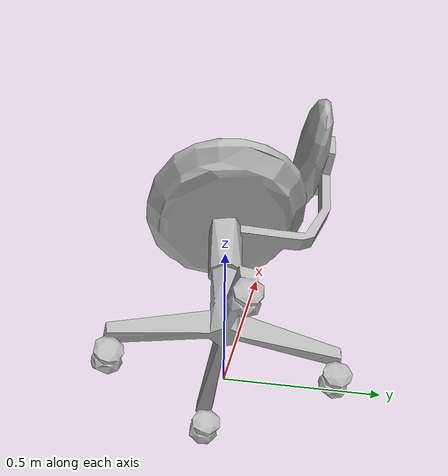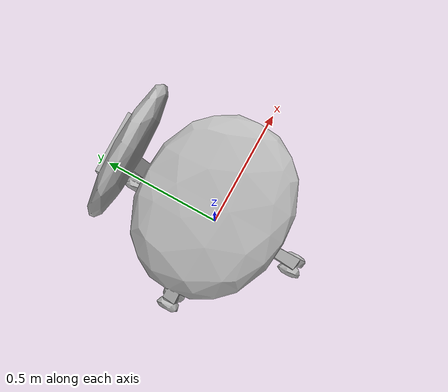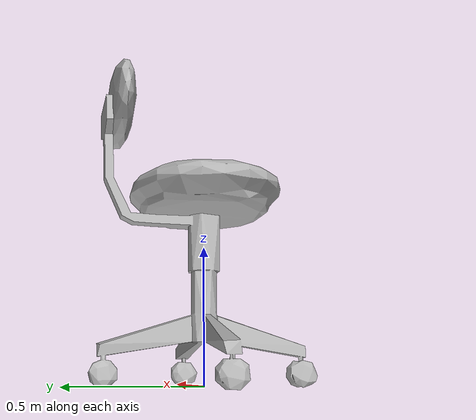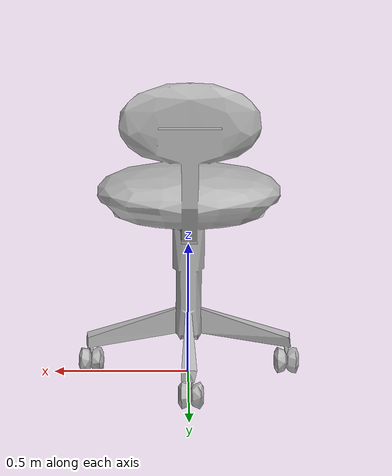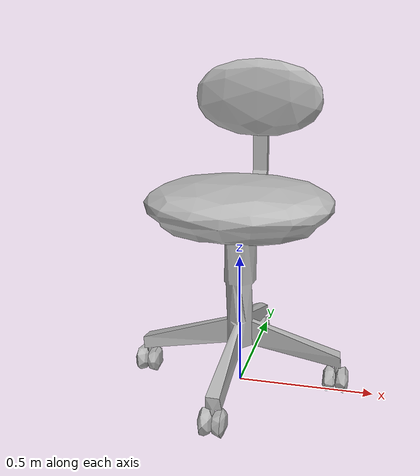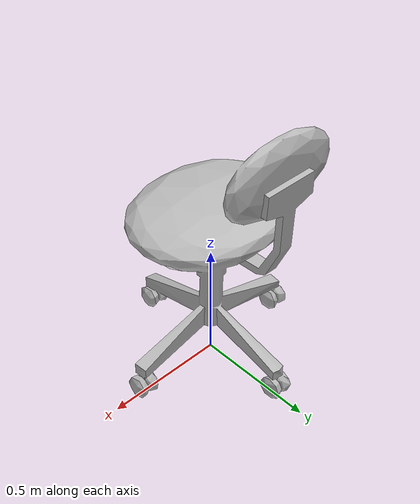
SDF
<?xml version='1.0' encoding='utf-8'?>
<sdf version="1.5">
  <model name="chair">
   <static>true</static>
    <link name="body">
      <pose>0 0 0 0 0 0</pose>

      <visual name="visual">
        <geometry>
          <mesh>
            <uri>model://chair/meshes/chair.dae</uri>
          </mesh>
        </geometry>
      </visual>

      <collision name="collision">
        <geometry>
          <mesh>
            <uri>model://chair/meshes/chair.dae</uri>
          </mesh>
        </geometry>
      </collision>

    </link>
  </model>
</sdf>
